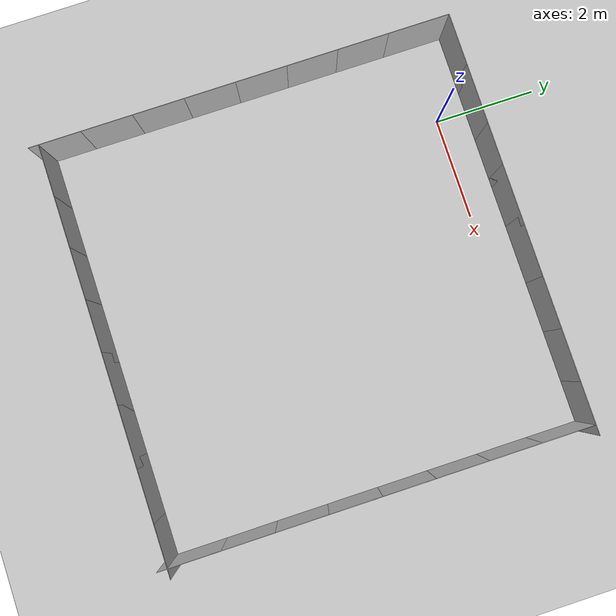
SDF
<sdf version="1.6">
 <world name="default">
  <light name="sun" type="directional">
   <pose>0 0 10 0 -0 0</pose>
   <diffuse>0.8 0.8 0.8 1</diffuse>
   <specular>0.2 0.2 0.2 1</specular>
   <attenuation>
    <range>1000</range>
    <constant>0.9</constant>
    <linear>0.01</linear>
    <quadratic>0.001</quadratic>
   </attenuation>
   <direction>-0.5 0.1 -0.9</direction>
  </light>
  <model name="ground_plane">
   <static>1</static>
   <link name="link">
    <collision name="collision">
     <geometry><plane><normal>0 0 1</normal><size>100 100</size></plane></geometry>
     <surface>
      <contact><collide_bitmask>65535</collide_bitmask></contact>
      <friction><ode><mu>100</mu><mu2>50</mu2></ode></friction>
     </surface>
    </collision>
    <visual name="visual">
     <cast_shadows>0</cast_shadows>
     <geometry><plane><normal>0 0 1</normal><size>100 100</size></plane></geometry>
     <material>
      <script><uri>file://media/materials/scripts/gazebo.material</uri><name>Gazebo/Grey</name></script>
     </material>
    </visual>
   </link>
  </model>
  <gravity>0 0 -9.8</gravity>
  <magnetic_field>6e-06 2.3e-05 -4.2e-05</magnetic_field>
  <atmosphere type="adiabatic"/>
  <physics name="default_physics" default="0" type="ode">
   <max_step_size>0.001</max_step_size>
   <real_time_factor>1</real_time_factor>
   <real_time_update_rate>1000</real_time_update_rate>
  </physics>
  <scene><ambient>0.4 0.4 0.4 1</ambient><background>0.7 0.7 0.7 1</background><shadows>1</shadows></scene>
  <audio><device>default</device></audio>
  <spherical_coordinates>
   <surface_model>EARTH_WGS84</surface_model>
   <latitude_deg>0</latitude_deg>
   <longitude_deg>0</longitude_deg>
   <elevation>0</elevation>
   <heading_deg>0</heading_deg>
  </spherical_coordinates>
  <model name="nist_maze_wall_120">
   <static>1</static>
   <link name="nist_maze_wall_120_link">
    <collision name="collision">
     <geometry>
      <mesh><uri>model://nist_maze_wall_120/meshes/nist_maze_wall_120.dae</uri><scale>1 1 1</scale></mesh>
     </geometry>
    </collision>
    <visual name="visual">
     <geometry>
      <mesh><uri>model://nist_maze_wall_120/meshes/nist_maze_wall_120.dae</uri><scale>1 1 1</scale></mesh>
     </geometry>
    </visual>
   </link>
   <pose>-1 0 0 0 -0 0</pose>
  </model>
  <model name="nist_maze_wall_120_clone">
   <static>1</static>
   <link name="nist_maze_wall_120_link">
    <collision name="collision">
     <geometry>
      <mesh><uri>model://nist_maze_wall_120/meshes/nist_maze_wall_120.dae</uri><scale>1 1 1</scale></mesh>
     </geometry>
    </collision>
    <visual name="visual">
     <geometry>
      <mesh><uri>model://nist_maze_wall_120/meshes/nist_maze_wall_120.dae</uri><scale>1 1 1</scale></mesh>
     </geometry>
    </visual>
   </link>
  </model>
  <model name="nist_maze_wall_120_clone_0">
   <static>1</static>
   <link name="nist_maze_wall_120_link">
    <collision name="collision">
     <geometry>
      <mesh><uri>model://nist_maze_wall_120/meshes/nist_maze_wall_120.dae</uri><scale>1 1 1</scale></mesh>
     </geometry>
    </collision>
    <visual name="visual">
     <geometry>
      <mesh><uri>model://nist_maze_wall_120/meshes/nist_maze_wall_120.dae</uri><scale>1 1 1</scale></mesh>
     </geometry>
    </visual>
   </link>
   <pose>1 0 0 0 -0 0</pose>
  </model>
  <model name="nist_maze_wall_120_clone_0_clone_2">
   <static>1</static>
   <link name="nist_maze_wall_120_link">
    <collision name="collision">
     <geometry>
      <mesh><uri>model://nist_maze_wall_120/meshes/nist_maze_wall_120.dae</uri><scale>1 1 1</scale></mesh>
     </geometry>
    </collision>
    <visual name="visual">
     <geometry>
      <mesh><uri>model://nist_maze_wall_120/meshes/nist_maze_wall_120.dae</uri><scale>1 1 1</scale></mesh>
     </geometry>
    </visual>
   </link>
   <pose>4 0 0 0 -0 0</pose>
  </model>
  <model name="nist_maze_wall_120_clone_0_clone_7">
   <static>1</static>
   <link name="nist_maze_wall_120_link">
    <collision name="collision">
     <geometry>
      <mesh><uri>model://nist_maze_wall_120/meshes/nist_maze_wall_120.dae</uri><scale>1 1 1</scale></mesh>
     </geometry>
    </collision>
    <visual name="visual">
     <geometry>
      <mesh><uri>model://nist_maze_wall_120/meshes/nist_maze_wall_120.dae</uri><scale>1 1 1</scale></mesh>
     </geometry>
    </visual>
   </link>
   <pose>5 0 0 0 -0 0</pose>
  </model>
  <model name="nist_maze_wall_120_clone_0_clone_8">
   <static>1</static>
   <link name="nist_maze_wall_120_link">
    <collision name="collision">
     <geometry>
      <mesh><uri>model://nist_maze_wall_120/meshes/nist_maze_wall_120.dae</uri><scale>1 1 1</scale></mesh>
     </geometry>
    </collision>
    <visual name="visual">
     <geometry>
      <mesh><uri>model://nist_maze_wall_120/meshes/nist_maze_wall_120.dae</uri><scale>1 1 1</scale></mesh>
     </geometry>
    </visual>
   </link>
   <pose>6 0 0 0 -0 0</pose>
  </model>
  <model name="nist_maze_wall_120_clone_0_clone_9">
   <static>1</static>
   <link name="nist_maze_wall_120_link">
    <collision name="collision">
     <geometry>
      <mesh><uri>model://nist_maze_wall_120/meshes/nist_maze_wall_120.dae</uri><scale>1 1 1</scale></mesh>
     </geometry>
    </collision>
    <visual name="visual">
     <geometry>
      <mesh><uri>model://nist_maze_wall_120/meshes/nist_maze_wall_120.dae</uri><scale>1 1 1</scale></mesh>
     </geometry>
    </visual>
   </link>
   <pose>3 0 0 0 -0 0</pose>
  </model>
  <model name="nist_maze_wall_120_clone_0_clone_0_clone">
   <static>1</static>
   <link name="nist_maze_wall_120_link">
    <collision name="collision">
     <geometry>
      <mesh><uri>model://nist_maze_wall_120/meshes/nist_maze_wall_120.dae</uri><scale>1 1 1</scale></mesh>
     </geometry>
    </collision>
    <visual name="visual">
     <geometry>
      <mesh><uri>model://nist_maze_wall_120/meshes/nist_maze_wall_120.dae</uri><scale>1 1 1</scale></mesh>
     </geometry>
    </visual>
   </link>
   <pose>2 0 0 0 -0 0</pose>
  </model>
  <model name="nist_maze_wall_120_clone_0_clone_8_clone">
   <static>1</static>
   <link name="nist_maze_wall_120_link">
    <collision name="collision">
     <geometry>
      <mesh><uri>model://nist_maze_wall_120/meshes/nist_maze_wall_120.dae</uri><scale>1 1 1</scale></mesh>
     </geometry>
    </collision>
    <visual name="visual">
     <geometry>
      <mesh><uri>model://nist_maze_wall_120/meshes/nist_maze_wall_120.dae</uri><scale>1 1 1</scale></mesh>
     </geometry>
    </visual>
   </link>
   <pose>7 -1 0 0 -0 1.5708</pose>
  </model>
  <model name="nist_maze_wall_120_clone_0_clone_8_clone_clone">
   <static>1</static>
   <link name="nist_maze_wall_120_link">
    <collision name="collision">
     <geometry>
      <mesh><uri>model://nist_maze_wall_120/meshes/nist_maze_wall_120.dae</uri><scale>1 1 1</scale></mesh>
     </geometry>
    </collision>
    <visual name="visual">
     <geometry>
      <mesh><uri>model://nist_maze_wall_120/meshes/nist_maze_wall_120.dae</uri><scale>1 1 1</scale></mesh>
     </geometry>
    </visual>
   </link>
   <pose>7 0 0 0 -0 1.5708</pose>
  </model>
  <model name="nist_maze_wall_120_clone_0_clone_8_clone_clone_0">
   <static>1</static>
   <link name="nist_maze_wall_120_link">
    <collision name="collision">
     <geometry>
      <mesh><uri>model://nist_maze_wall_120/meshes/nist_maze_wall_120.dae</uri><scale>1 1 1</scale></mesh>
     </geometry>
    </collision>
    <visual name="visual">
     <geometry>
      <mesh><uri>model://nist_maze_wall_120/meshes/nist_maze_wall_120.dae</uri><scale>1 1 1</scale></mesh>
     </geometry>
    </visual>
   </link>
   <pose>7 -2 0 0 -0 1.5708</pose>
  </model>
  <model name="nist_maze_wall_120_clone_0_clone_8_clone_clone_1">
   <static>1</static>
   <link name="nist_maze_wall_120_link">
    <collision name="collision">
     <geometry>
      <mesh><uri>model://nist_maze_wall_120/meshes/nist_maze_wall_120.dae</uri><scale>1 1 1</scale></mesh>
     </geometry>
    </collision>
    <visual name="visual">
     <geometry>
      <mesh><uri>model://nist_maze_wall_120/meshes/nist_maze_wall_120.dae</uri><scale>1 1 1</scale></mesh>
     </geometry>
    </visual>
   </link>
   <pose>7 -3 0 0 -0 1.5708</pose>
  </model>
  <model name="nist_maze_wall_120_clone_0_clone_8_clone_clone_2">
   <static>1</static>
   <link name="nist_maze_wall_120_link">
    <collision name="collision">
     <geometry>
      <mesh><uri>model://nist_maze_wall_120/meshes/nist_maze_wall_120.dae</uri><scale>1 1 1</scale></mesh>
     </geometry>
    </collision>
    <visual name="visual">
     <geometry>
      <mesh><uri>model://nist_maze_wall_120/meshes/nist_maze_wall_120.dae</uri><scale>1 1 1</scale></mesh>
     </geometry>
    </visual>
   </link>
   <pose>7 -7 0 0 -0 1.5708</pose>
  </model>
  <model name="nist_maze_wall_120_clone_0_clone_8_clone_clone_3">
   <static>1</static>
   <link name="nist_maze_wall_120_link">
    <collision name="collision">
     <geometry>
      <mesh><uri>model://nist_maze_wall_120/meshes/nist_maze_wall_120.dae</uri><scale>1 1 1</scale></mesh>
     </geometry>
    </collision>
    <visual name="visual">
     <geometry>
      <mesh><uri>model://nist_maze_wall_120/meshes/nist_maze_wall_120.dae</uri><scale>1 1 1</scale></mesh>
     </geometry>
    </visual>
   </link>
   <pose>7 -5 0 0 -0 1.5708</pose>
  </model>
  <model name="nist_maze_wall_120_clone_0_clone_8_clone_clone_4">
   <static>1</static>
   <link name="nist_maze_wall_120_link">
    <collision name="collision">
     <geometry>
      <mesh><uri>model://nist_maze_wall_120/meshes/nist_maze_wall_120.dae</uri><scale>1 1 1</scale></mesh>
     </geometry>
    </collision>
    <visual name="visual">
     <geometry>
      <mesh><uri>model://nist_maze_wall_120/meshes/nist_maze_wall_120.dae</uri><scale>1 1 1</scale></mesh>
     </geometry>
    </visual>
   </link>
   <pose>7 -6 0 0 -0 1.5708</pose>
  </model>
  <model name="nist_maze_wall_120_clone_0_clone_8_clone_clone_5">
   <static>1</static>
   <link name="nist_maze_wall_120_link">
    <collision name="collision">
     <geometry>
      <mesh><uri>model://nist_maze_wall_120/meshes/nist_maze_wall_120.dae</uri><scale>1 1 1</scale></mesh>
     </geometry>
    </collision>
    <visual name="visual">
     <geometry>
      <mesh><uri>model://nist_maze_wall_120/meshes/nist_maze_wall_120.dae</uri><scale>1 1 1</scale></mesh>
     </geometry>
    </visual>
   </link>
   <pose>7 -4 0 0 -0 1.5708</pose>
  </model>
  <model name="nist_maze_wall_120_clone_0_clone_8_clone_clone_6">
   <static>1</static>
   <link name="nist_maze_wall_120_link">
    <collision name="collision">
     <geometry>
      <mesh><uri>model://nist_maze_wall_120/meshes/nist_maze_wall_120.dae</uri><scale>1 1 1</scale></mesh>
     </geometry>
    </collision>
    <visual name="visual">
     <geometry>
      <mesh><uri>model://nist_maze_wall_120/meshes/nist_maze_wall_120.dae</uri><scale>1 1 1</scale></mesh>
     </geometry>
    </visual>
   </link>
   <pose>-1 0 0 0 -0 1.5708</pose>
  </model>
  <model name="nist_maze_wall_120_clone_0_clone_8_clone_clone_7">
   <static>1</static>
   <link name="nist_maze_wall_120_link">
    <collision name="collision">
     <geometry>
      <mesh><uri>model://nist_maze_wall_120/meshes/nist_maze_wall_120.dae</uri><scale>1 1 1</scale></mesh>
     </geometry>
    </collision>
    <visual name="visual">
     <geometry>
      <mesh><uri>model://nist_maze_wall_120/meshes/nist_maze_wall_120.dae</uri><scale>1 1 1</scale></mesh>
     </geometry>
    </visual>
   </link>
   <pose>-1 -1 0 0 -0 1.5708</pose>
  </model>
  <model name="nist_maze_wall_120_clone_0_clone_8_clone_clone_8">
   <static>1</static>
   <link name="nist_maze_wall_120_link">
    <collision name="collision">
     <geometry>
      <mesh><uri>model://nist_maze_wall_120/meshes/nist_maze_wall_120.dae</uri><scale>1 1 1</scale></mesh>
     </geometry>
    </collision>
    <visual name="visual">
     <geometry>
      <mesh><uri>model://nist_maze_wall_120/meshes/nist_maze_wall_120.dae</uri><scale>1 1 1</scale></mesh>
     </geometry>
    </visual>
   </link>
   <pose>-1 -3 0 0 -0 1.5708</pose>
  </model>
  <model name="nist_maze_wall_120_clone_0_clone_8_clone_clone_9">
   <static>1</static>
   <link name="nist_maze_wall_120_link">
    <collision name="collision">
     <geometry>
      <mesh><uri>model://nist_maze_wall_120/meshes/nist_maze_wall_120.dae</uri><scale>1 1 1</scale></mesh>
     </geometry>
    </collision>
    <visual name="visual">
     <geometry>
      <mesh><uri>model://nist_maze_wall_120/meshes/nist_maze_wall_120.dae</uri><scale>1 1 1</scale></mesh>
     </geometry>
    </visual>
   </link>
   <pose>-1 -5 0 0 -0 1.5708</pose>
  </model>
  <model name="nist_maze_wall_120_clone_0_clone_8_clone_clone_10">
   <static>1</static>
   <link name="nist_maze_wall_120_link">
    <collision name="collision">
     <geometry>
      <mesh><uri>model://nist_maze_wall_120/meshes/nist_maze_wall_120.dae</uri><scale>1 1 1</scale></mesh>
     </geometry>
    </collision>
    <visual name="visual">
     <geometry>
      <mesh><uri>model://nist_maze_wall_120/meshes/nist_maze_wall_120.dae</uri><scale>1 1 1</scale></mesh>
     </geometry>
    </visual>
   </link>
   <pose>-1 -7 0 0 -0 1.5708</pose>
  </model>
  <model name="nist_maze_wall_120_clone_0_clone_8_clone_clone_11">
   <static>1</static>
   <link name="nist_maze_wall_120_link">
    <collision name="collision">
     <geometry>
      <mesh><uri>model://nist_maze_wall_120/meshes/nist_maze_wall_120.dae</uri><scale>1 1 1</scale></mesh>
     </geometry>
    </collision>
    <visual name="visual">
     <geometry>
      <mesh><uri>model://nist_maze_wall_120/meshes/nist_maze_wall_120.dae</uri><scale>1 1 1</scale></mesh>
     </geometry>
    </visual>
   </link>
   <pose>-1 -2 0 0 -0 1.5708</pose>
  </model>
  <model name="nist_maze_wall_120_clone_0_clone_8_clone_clone_12">
   <static>1</static>
   <link name="nist_maze_wall_120_link">
    <collision name="collision">
     <geometry>
      <mesh><uri>model://nist_maze_wall_120/meshes/nist_maze_wall_120.dae</uri><scale>1 1 1</scale></mesh>
     </geometry>
    </collision>
    <visual name="visual">
     <geometry>
      <mesh><uri>model://nist_maze_wall_120/meshes/nist_maze_wall_120.dae</uri><scale>1 1 1</scale></mesh>
     </geometry>
    </visual>
   </link>
   <pose>-1 -4 0 0 -0 1.5708</pose>
  </model>
  <model name="nist_maze_wall_120_clone_0_clone_8_clone_clone_13">
   <static>1</static>
   <link name="nist_maze_wall_120_link">
    <collision name="collision">
     <geometry>
      <mesh><uri>model://nist_maze_wall_120/meshes/nist_maze_wall_120.dae</uri><scale>1 1 1</scale></mesh>
     </geometry>
    </collision>
    <visual name="visual">
     <geometry>
      <mesh><uri>model://nist_maze_wall_120/meshes/nist_maze_wall_120.dae</uri><scale>1 1 1</scale></mesh>
     </geometry>
    </visual>
   </link>
   <pose>-1 -6 0 0 -0 1.5708</pose>
  </model>
  <model name="nist_maze_wall_120_clone_1">
   <static>1</static>
   <link name="nist_maze_wall_120_link">
    <collision name="collision">
     <geometry>
      <mesh><uri>model://nist_maze_wall_120/meshes/nist_maze_wall_120.dae</uri><scale>1 1 1</scale></mesh>
     </geometry>
    </collision>
    <visual name="visual">
     <geometry>
      <mesh><uri>model://nist_maze_wall_120/meshes/nist_maze_wall_120.dae</uri><scale>1 1 1</scale></mesh>
     </geometry>
    </visual>
   </link>
   <pose>-1 -8 0 0 -0 0</pose>
  </model>
  <model name="nist_maze_wall_120_clone_2">
   <static>1</static>
   <link name="nist_maze_wall_120_link">
    <collision name="collision">
     <geometry>
      <mesh><uri>model://nist_maze_wall_120/meshes/nist_maze_wall_120.dae</uri><scale>1 1 1</scale></mesh>
     </geometry>
    </collision>
    <visual name="visual">
     <geometry>
      <mesh><uri>model://nist_maze_wall_120/meshes/nist_maze_wall_120.dae</uri><scale>1 1 1</scale></mesh>
     </geometry>
    </visual>
   </link>
   <pose>0 -8 0 0 -0 0</pose>
  </model>
  <model name="nist_maze_wall_120_clone_3">
   <static>1</static>
   <link name="nist_maze_wall_120_link">
    <collision name="collision">
     <geometry>
      <mesh><uri>model://nist_maze_wall_120/meshes/nist_maze_wall_120.dae</uri><scale>1 1 1</scale></mesh>
     </geometry>
    </collision>
    <visual name="visual">
     <geometry>
      <mesh><uri>model://nist_maze_wall_120/meshes/nist_maze_wall_120.dae</uri><scale>1 1 1</scale></mesh>
     </geometry>
    </visual>
   </link>
   <pose>1 -8 0 0 -0 0</pose>
  </model>
  <model name="nist_maze_wall_120_clone_4">
   <static>1</static>
   <link name="nist_maze_wall_120_link">
    <collision name="collision">
     <geometry>
      <mesh><uri>model://nist_maze_wall_120/meshes/nist_maze_wall_120.dae</uri><scale>1 1 1</scale></mesh>
     </geometry>
    </collision>
    <visual name="visual">
     <geometry>
      <mesh><uri>model://nist_maze_wall_120/meshes/nist_maze_wall_120.dae</uri><scale>1 1 1</scale></mesh>
     </geometry>
    </visual>
   </link>
   <pose>6 -8 0 0 -0 0</pose>
  </model>
  <model name="nist_maze_wall_120_clone_5">
   <static>1</static>
   <link name="nist_maze_wall_120_link">
    <collision name="collision">
     <geometry>
      <mesh><uri>model://nist_maze_wall_120/meshes/nist_maze_wall_120.dae</uri><scale>1 1 1</scale></mesh>
     </geometry>
    </collision>
    <visual name="visual">
     <geometry>
      <mesh><uri>model://nist_maze_wall_120/meshes/nist_maze_wall_120.dae</uri><scale>1 1 1</scale></mesh>
     </geometry>
    </visual>
   </link>
   <pose>5 -8 0 0 -0 0</pose>
  </model>
  <model name="nist_maze_wall_120_clone_6">
   <static>1</static>
   <link name="nist_maze_wall_120_link">
    <collision name="collision">
     <geometry>
      <mesh><uri>model://nist_maze_wall_120/meshes/nist_maze_wall_120.dae</uri><scale>1 1 1</scale></mesh>
     </geometry>
    </collision>
    <visual name="visual">
     <geometry>
      <mesh><uri>model://nist_maze_wall_120/meshes/nist_maze_wall_120.dae</uri><scale>1 1 1</scale></mesh>
     </geometry>
    </visual>
   </link>
   <pose>4 -8 0 0 -0 0</pose>
  </model>
  <model name="nist_maze_wall_120_clone_7">
   <static>1</static>
   <link name="nist_maze_wall_120_link">
    <collision name="collision">
     <geometry>
      <mesh><uri>model://nist_maze_wall_120/meshes/nist_maze_wall_120.dae</uri><scale>1 1 1</scale></mesh>
     </geometry>
    </collision>
    <visual name="visual">
     <geometry>
      <mesh><uri>model://nist_maze_wall_120/meshes/nist_maze_wall_120.dae</uri><scale>1 1 1</scale></mesh>
     </geometry>
    </visual>
   </link>
   <pose>3 -8 0 0 -0 0</pose>
  </model>
  <model name="nist_maze_wall_120_clone_8">
   <static>1</static>
   <link name="nist_maze_wall_120_link">
    <collision name="collision">
     <geometry>
      <mesh><uri>model://nist_maze_wall_120/meshes/nist_maze_wall_120.dae</uri><scale>1 1 1</scale></mesh>
     </geometry>
    </collision>
    <visual name="visual">
     <geometry>
      <mesh><uri>model://nist_maze_wall_120/meshes/nist_maze_wall_120.dae</uri><scale>1 1 1</scale></mesh>
     </geometry>
    </visual>
   </link>
   <pose>2 -8 0 0 -0 0</pose>
  </model>
 </world>
</sdf>
